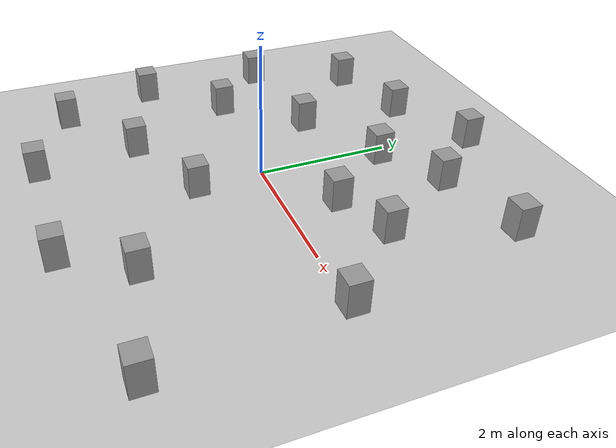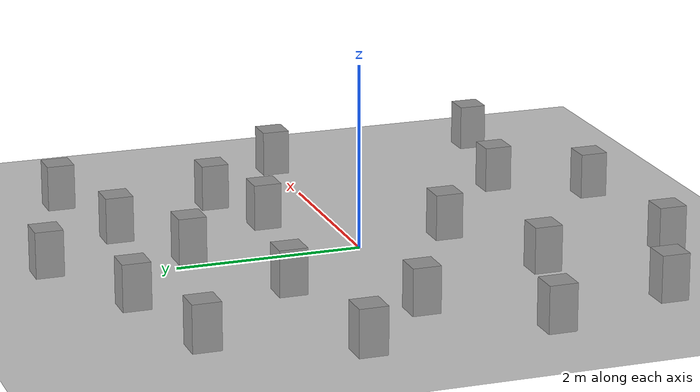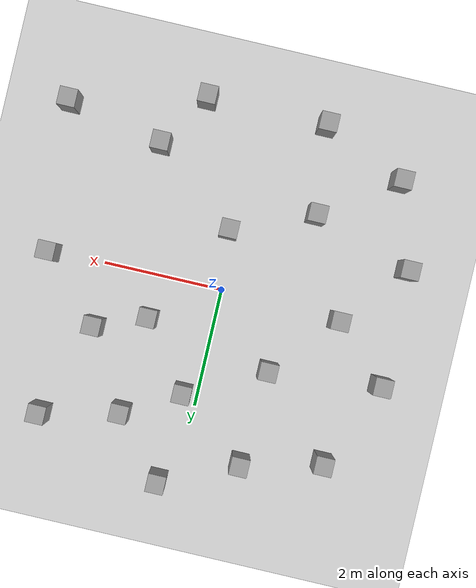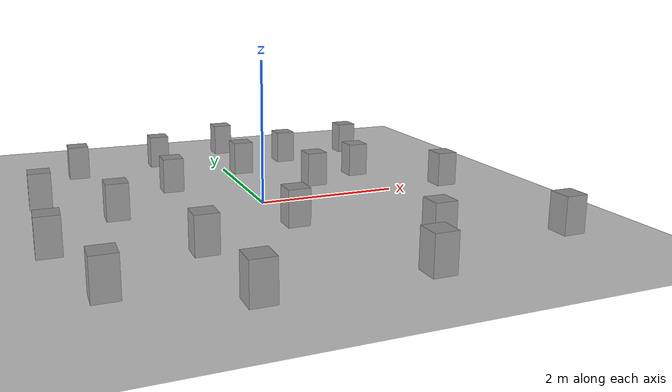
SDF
<sdf version="1.6">
 <world name="default">
  <light name="sun" type="directional">
   <pose>0 0 10 0 -0 0</pose>
   <diffuse>0.8 0.8 0.8 1</diffuse>
   <specular>0.2 0.2 0.2 1</specular>
   <attenuation>
    <range>1000</range>
    <constant>0.9</constant>
    <linear>0.01</linear>
    <quadratic>0.001</quadratic>
   </attenuation>
   <direction>-0.5 0.1 -0.9</direction>
  </light>
  <model name="ground_plane">
   <static>1</static>
   <link name="link">
    <collision name="collision">
     <geometry><plane><normal>0 0 1</normal><size>100 100</size></plane></geometry>
     <surface>
      <contact><collide_bitmask>65535</collide_bitmask></contact>
      <friction><ode><mu>100</mu><mu2>50</mu2></ode></friction>
     </surface>
    </collision>
    <visual name="visual">
     <cast_shadows>0</cast_shadows>
     <geometry><plane><normal>0 0 1</normal><size>100 100</size></plane></geometry>
     <material>
      <script><uri>file://media/materials/scripts/gazebo.material</uri><name>Gazebo/Grey</name></script>
     </material>
    </visual>
   </link>
  </model>
  <gravity>0 0 -9.8</gravity>
  <magnetic_field>6e-06 2.3e-05 -4.2e-05</magnetic_field>
  <atmosphere type="adiabatic"/>
  <physics name="default_physics" default="0" type="ode">
   <max_step_size>0.001</max_step_size>
   <real_time_factor>1</real_time_factor>
   <real_time_update_rate>1000</real_time_update_rate>
  </physics>
  <scene><ambient>0.4 0.4 0.4 1</ambient><background>0.7 0.7 0.7 1</background><shadows>1</shadows></scene>
  <audio><device>default</device></audio>
  <spherical_coordinates>
   <surface_model>EARTH_WGS84</surface_model>
   <latitude_deg>0</latitude_deg>
   <longitude_deg>0</longitude_deg>
   <elevation>0</elevation>
   <heading_deg>0</heading_deg>
  </spherical_coordinates>
  <model name="Untitled1_0">
   <link name="link_0">
    <inertial>
     <mass>1</mass>
     <inertia>
      <ixx>0.166667</ixx>
      <ixy>0</ixy>
      <ixz>0</ixz>
      <iyy>0.166667</iyy>
      <iyz>0</iyz>
      <izz>0.166667</izz>
     </inertia>
    </inertial>
    <visual name="visual">
     <geometry><box><size>0.3 0.3 0.5</size></box></geometry>
     <material>
      <lighting>1</lighting>
      <script><uri>file://media/materials/scripts/gazebo.material</uri><name>Gazebo/Grey</name></script>
      <shader type="vertex"><normal_map>__default__</normal_map></shader>
      <ambient>0.3 0.3 0.3 1</ambient>
      <diffuse>0.7 0.7 0.7 1</diffuse>
      <specular>0.01 0.01 0.01 1</specular>
      <emissive>0 0 0 1</emissive>
     </material>
    </visual>
    <collision name="collision">
     <geometry><box><size>0.3 0.3 0.5</size></box></geometry>
     <surface>
      <friction>
       <ode><mu>1</mu><mu2>1</mu2><fdir1>0 0 0</fdir1><slip1>0</slip1><slip2>0</slip2></ode>
       <torsional>
        <coefficient>1</coefficient>
        <patch_radius>0</patch_radius>
        <surface_radius>0</surface_radius>
        <use_patch_radius>1</use_patch_radius>
        <ode><slip>0</slip></ode>
       </torsional>
      </friction>
      <bounce><restitution_coefficient>0</restitution_coefficient><threshold>1e+06</threshold></bounce>
      <contact>
       <collide_without_contact>0</collide_without_contact>
       <collide_without_contact_bitmask>1</collide_without_contact_bitmask>
       <collide_bitmask>1</collide_bitmask>
       <ode>
        <soft_cfm>0</soft_cfm>
        <soft_erp>0.2</soft_erp>
        <kp>1e+13</kp>
        <kd>1</kd>
        <max_vel>0.01</max_vel>
        <min_depth>0</min_depth>
       </ode>
       <bullet>
        <split_impulse>1</split_impulse>
        <split_impulse_penetration_threshold>-0.01</split_impulse_penetration_threshold>
        <soft_cfm>0</soft_cfm>
        <soft_erp>0.2</soft_erp>
        <kp>1e+13</kp>
        <kd>1</kd>
       </bullet>
      </contact>
     </surface>
    </collision>
   </link>
   <static>0</static>
   <pose>2.92004 0.021247 0.25 0 -0 -1e-06</pose>
  </model>
  <model name="Untitled1_1">
   <link name="link_0">
    <inertial>
     <mass>1</mass>
     <inertia>
      <ixx>0.166667</ixx>
      <ixy>0</ixy>
      <ixz>0</ixz>
      <iyy>0.166667</iyy>
      <iyz>0</iyz>
      <izz>0.166667</izz>
     </inertia>
    </inertial>
    <visual name="visual">
     <geometry><box><size>0.3 0.3 0.5</size></box></geometry>
     <material>
      <lighting>1</lighting>
      <script><uri>file://media/materials/scripts/gazebo.material</uri><name>Gazebo/Grey</name></script>
      <shader type="vertex"><normal_map>__default__</normal_map></shader>
      <ambient>0.3 0.3 0.3 1</ambient>
      <diffuse>0.7 0.7 0.7 1</diffuse>
      <specular>0.01 0.01 0.01 1</specular>
      <emissive>0 0 0 1</emissive>
     </material>
    </visual>
    <collision name="collision">
     <geometry><box><size>0.3 0.3 0.5</size></box></geometry>
     <surface>
      <friction>
       <ode><mu>1</mu><mu2>1</mu2><fdir1>0 0 0</fdir1><slip1>0</slip1><slip2>0</slip2></ode>
       <torsional>
        <coefficient>1</coefficient>
        <patch_radius>0</patch_radius>
        <surface_radius>0</surface_radius>
        <use_patch_radius>1</use_patch_radius>
        <ode><slip>0</slip></ode>
       </torsional>
      </friction>
      <bounce><restitution_coefficient>0</restitution_coefficient><threshold>1e+06</threshold></bounce>
      <contact>
       <collide_without_contact>0</collide_without_contact>
       <collide_without_contact_bitmask>1</collide_without_contact_bitmask>
       <collide_bitmask>1</collide_bitmask>
       <ode>
        <soft_cfm>0</soft_cfm>
        <soft_erp>0.2</soft_erp>
        <kp>1e+13</kp>
        <kd>1</kd>
        <max_vel>0.01</max_vel>
        <min_depth>0</min_depth>
       </ode>
       <bullet>
        <split_impulse>1</split_impulse>
        <split_impulse_penetration_threshold>-0.01</split_impulse_penetration_threshold>
        <soft_cfm>0</soft_cfm>
        <soft_erp>0.2</soft_erp>
        <kp>1e+13</kp>
        <kd>1</kd>
       </bullet>
      </contact>
     </surface>
    </collision>
   </link>
   <static>0</static>
   <pose>1.07412 0.713994 0.25 0 -0 2e-06</pose>
  </model>
  <model name="Untitled1_2">
   <link name="link_0">
    <inertial>
     <mass>1</mass>
     <inertia>
      <ixx>0.166667</ixx>
      <ixy>0</ixy>
      <ixz>0</ixz>
      <iyy>0.166667</iyy>
      <iyz>0</iyz>
      <izz>0.166667</izz>
     </inertia>
    </inertial>
    <visual name="visual">
     <geometry><box><size>0.3 0.3 0.5</size></box></geometry>
     <material>
      <lighting>1</lighting>
      <script><uri>file://media/materials/scripts/gazebo.material</uri><name>Gazebo/Grey</name></script>
      <shader type="vertex"><normal_map>__default__</normal_map></shader>
      <ambient>0.3 0.3 0.3 1</ambient>
      <diffuse>0.7 0.7 0.7 1</diffuse>
      <specular>0.01 0.01 0.01 1</specular>
      <emissive>0 0 0 1</emissive>
     </material>
    </visual>
    <collision name="collision">
     <geometry><box><size>0.3 0.3 0.5</size></box></geometry>
     <surface>
      <friction>
       <ode><mu>1</mu><mu2>1</mu2><fdir1>0 0 0</fdir1><slip1>0</slip1><slip2>0</slip2></ode>
       <torsional>
        <coefficient>1</coefficient>
        <patch_radius>0</patch_radius>
        <surface_radius>0</surface_radius>
        <use_patch_radius>1</use_patch_radius>
        <ode><slip>0</slip></ode>
       </torsional>
      </friction>
      <bounce><restitution_coefficient>0</restitution_coefficient><threshold>1e+06</threshold></bounce>
      <contact>
       <collide_without_contact>0</collide_without_contact>
       <collide_without_contact_bitmask>1</collide_without_contact_bitmask>
       <collide_bitmask>1</collide_bitmask>
       <ode>
        <soft_cfm>0</soft_cfm>
        <soft_erp>0.2</soft_erp>
        <kp>1e+13</kp>
        <kd>1</kd>
        <max_vel>0.01</max_vel>
        <min_depth>0</min_depth>
       </ode>
       <bullet>
        <split_impulse>1</split_impulse>
        <split_impulse_penetration_threshold>-0.01</split_impulse_penetration_threshold>
        <soft_cfm>0</soft_cfm>
        <soft_erp>0.2</soft_erp>
        <kp>1e+13</kp>
        <kd>1</kd>
       </bullet>
      </contact>
     </surface>
    </collision>
   </link>
   <static>0</static>
   <pose>1.91895 1.04629 0.25 0 0 -3e-06</pose>
  </model>
  <model name="Untitled1_3">
   <link name="link_0">
    <inertial>
     <mass>1</mass>
     <inertia>
      <ixx>0.166667</ixx>
      <ixy>0</ixy>
      <ixz>0</ixz>
      <iyy>0.166667</iyy>
      <iyz>0</iyz>
      <izz>0.166667</izz>
     </inertia>
    </inertial>
    <visual name="visual">
     <geometry><box><size>0.3 0.3 0.5</size></box></geometry>
     <material>
      <lighting>1</lighting>
      <script><uri>file://media/materials/scripts/gazebo.material</uri><name>Gazebo/Grey</name></script>
      <shader type="vertex"><normal_map>__default__</normal_map></shader>
      <ambient>0.3 0.3 0.3 1</ambient>
      <diffuse>0.7 0.7 0.7 1</diffuse>
      <specular>0.01 0.01 0.01 1</specular>
      <emissive>0 0 0 1</emissive>
     </material>
    </visual>
    <collision name="collision">
     <geometry><box><size>0.3 0.3 0.5</size></box></geometry>
     <surface>
      <friction>
       <ode><mu>1</mu><mu2>1</mu2><fdir1>0 0 0</fdir1><slip1>0</slip1><slip2>0</slip2></ode>
       <torsional>
        <coefficient>1</coefficient>
        <patch_radius>0</patch_radius>
        <surface_radius>0</surface_radius>
        <use_patch_radius>1</use_patch_radius>
        <ode><slip>0</slip></ode>
       </torsional>
      </friction>
      <bounce><restitution_coefficient>0</restitution_coefficient><threshold>1e+06</threshold></bounce>
      <contact>
       <collide_without_contact>0</collide_without_contact>
       <collide_without_contact_bitmask>1</collide_without_contact_bitmask>
       <collide_bitmask>1</collide_bitmask>
       <ode>
        <soft_cfm>0</soft_cfm>
        <soft_erp>0.2</soft_erp>
        <kp>1e+13</kp>
        <kd>1</kd>
        <max_vel>0.01</max_vel>
        <min_depth>0</min_depth>
       </ode>
       <bullet>
        <split_impulse>1</split_impulse>
        <split_impulse_penetration_threshold>-0.01</split_impulse_penetration_threshold>
        <soft_cfm>0</soft_cfm>
        <soft_erp>0.2</soft_erp>
        <kp>1e+13</kp>
        <kd>1</kd>
       </bullet>
      </contact>
     </surface>
    </collision>
   </link>
   <static>0</static>
   <pose>0.319842 3.2987 0.25 -0 -0 -1e-06</pose>
  </model>
  <model name="Untitled1_4">
   <link name="link_0">
    <inertial>
     <mass>1</mass>
     <inertia>
      <ixx>0.166667</ixx>
      <ixy>0</ixy>
      <ixz>0</ixz>
      <iyy>0.166667</iyy>
      <iyz>0</iyz>
      <izz>0.166667</izz>
     </inertia>
    </inertial>
    <visual name="visual">
     <geometry><box><size>0.3 0.3 0.5</size></box></geometry>
     <material>
      <lighting>1</lighting>
      <script><uri>file://media/materials/scripts/gazebo.material</uri><name>Gazebo/Grey</name></script>
      <shader type="vertex"><normal_map>__default__</normal_map></shader>
      <ambient>0.3 0.3 0.3 1</ambient>
      <diffuse>0.7 0.7 0.7 1</diffuse>
      <specular>0.01 0.01 0.01 1</specular>
      <emissive>0 0 0 1</emissive>
     </material>
    </visual>
    <collision name="collision">
     <geometry><box><size>0.3 0.3 0.5</size></box></geometry>
     <surface>
      <friction>
       <ode><mu>1</mu><mu2>1</mu2><fdir1>0 0 0</fdir1><slip1>0</slip1><slip2>0</slip2></ode>
       <torsional>
        <coefficient>1</coefficient>
        <patch_radius>0</patch_radius>
        <surface_radius>0</surface_radius>
        <use_patch_radius>1</use_patch_radius>
        <ode><slip>0</slip></ode>
       </torsional>
      </friction>
      <bounce><restitution_coefficient>0</restitution_coefficient><threshold>1e+06</threshold></bounce>
      <contact>
       <collide_without_contact>0</collide_without_contact>
       <collide_without_contact_bitmask>1</collide_without_contact_bitmask>
       <collide_bitmask>1</collide_bitmask>
       <ode>
        <soft_cfm>0</soft_cfm>
        <soft_erp>0.2</soft_erp>
        <kp>1e+13</kp>
        <kd>1</kd>
        <max_vel>0.01</max_vel>
        <min_depth>0</min_depth>
       </ode>
       <bullet>
        <split_impulse>1</split_impulse>
        <split_impulse_penetration_threshold>-0.01</split_impulse_penetration_threshold>
        <soft_cfm>0</soft_cfm>
        <soft_erp>0.2</soft_erp>
        <kp>1e+13</kp>
        <kd>1</kd>
       </bullet>
      </contact>
     </surface>
    </collision>
   </link>
   <static>0</static>
   <pose>0.24227 1.79828 0.25 0 0 -5e-06</pose>
  </model>
  <model name="Untitled1_5">
   <link name="link_0">
    <inertial>
     <mass>1</mass>
     <inertia>
      <ixx>0.166667</ixx>
      <ixy>0</ixy>
      <ixz>0</ixz>
      <iyy>0.166667</iyy>
      <iyz>0</iyz>
      <izz>0.166667</izz>
     </inertia>
    </inertial>
    <visual name="visual">
     <geometry><box><size>0.3 0.3 0.5</size></box></geometry>
     <material>
      <lighting>1</lighting>
      <script><uri>file://media/materials/scripts/gazebo.material</uri><name>Gazebo/Grey</name></script>
      <shader type="vertex"><normal_map>__default__</normal_map></shader>
      <ambient>0.3 0.3 0.3 1</ambient>
      <diffuse>0.7 0.7 0.7 1</diffuse>
      <specular>0.01 0.01 0.01 1</specular>
      <emissive>0 0 0 1</emissive>
     </material>
    </visual>
    <collision name="collision">
     <geometry><box><size>0.3 0.3 0.5</size></box></geometry>
     <surface>
      <friction>
       <ode><mu>1</mu><mu2>1</mu2><fdir1>0 0 0</fdir1><slip1>0</slip1><slip2>0</slip2></ode>
       <torsional>
        <coefficient>1</coefficient>
        <patch_radius>0</patch_radius>
        <surface_radius>0</surface_radius>
        <use_patch_radius>1</use_patch_radius>
        <ode><slip>0</slip></ode>
       </torsional>
      </friction>
      <bounce><restitution_coefficient>0</restitution_coefficient><threshold>1e+06</threshold></bounce>
      <contact>
       <collide_without_contact>0</collide_without_contact>
       <collide_without_contact_bitmask>1</collide_without_contact_bitmask>
       <collide_bitmask>1</collide_bitmask>
       <ode>
        <soft_cfm>0</soft_cfm>
        <soft_erp>0.2</soft_erp>
        <kp>1e+13</kp>
        <kd>1</kd>
        <max_vel>0.01</max_vel>
        <min_depth>0</min_depth>
       </ode>
       <bullet>
        <split_impulse>1</split_impulse>
        <split_impulse_penetration_threshold>-0.01</split_impulse_penetration_threshold>
        <soft_cfm>0</soft_cfm>
        <soft_erp>0.2</soft_erp>
        <kp>1e+13</kp>
        <kd>1</kd>
       </bullet>
      </contact>
     </surface>
    </collision>
   </link>
   <static>0</static>
   <pose>1.16493 2.33132 0.25 0 -0 2e-06</pose>
  </model>
  <model name="Untitled1_6">
   <link name="link_0">
    <inertial>
     <mass>1</mass>
     <inertia>
      <ixx>0.166667</ixx>
      <ixy>0</ixy>
      <ixz>0</ixz>
      <iyy>0.166667</iyy>
      <iyz>0</iyz>
      <izz>0.166667</izz>
     </inertia>
    </inertial>
    <visual name="visual">
     <geometry><box><size>0.3 0.3 0.5</size></box></geometry>
     <material>
      <lighting>1</lighting>
      <script><uri>file://media/materials/scripts/gazebo.material</uri><name>Gazebo/Grey</name></script>
      <shader type="vertex"><normal_map>__default__</normal_map></shader>
      <ambient>0.3 0.3 0.3 1</ambient>
      <diffuse>0.7 0.7 0.7 1</diffuse>
      <specular>0.01 0.01 0.01 1</specular>
      <emissive>0 0 0 1</emissive>
     </material>
    </visual>
    <collision name="collision">
     <geometry><box><size>0.3 0.3 0.5</size></box></geometry>
     <surface>
      <friction>
       <ode><mu>1</mu><mu2>1</mu2><fdir1>0 0 0</fdir1><slip1>0</slip1><slip2>0</slip2></ode>
       <torsional>
        <coefficient>1</coefficient>
        <patch_radius>0</patch_radius>
        <surface_radius>0</surface_radius>
        <use_patch_radius>1</use_patch_radius>
        <ode><slip>0</slip></ode>
       </torsional>
      </friction>
      <bounce><restitution_coefficient>0</restitution_coefficient><threshold>1e+06</threshold></bounce>
      <contact>
       <collide_without_contact>0</collide_without_contact>
       <collide_without_contact_bitmask>1</collide_without_contact_bitmask>
       <collide_bitmask>1</collide_bitmask>
       <ode>
        <soft_cfm>0</soft_cfm>
        <soft_erp>0.2</soft_erp>
        <kp>1e+13</kp>
        <kd>1</kd>
        <max_vel>0.01</max_vel>
        <min_depth>0</min_depth>
       </ode>
       <bullet>
        <split_impulse>1</split_impulse>
        <split_impulse_penetration_threshold>-0.01</split_impulse_penetration_threshold>
        <soft_cfm>0</soft_cfm>
        <soft_erp>0.2</soft_erp>
        <kp>1e+13</kp>
        <kd>1</kd>
       </bullet>
      </contact>
     </surface>
    </collision>
   </link>
   <static>0</static>
   <pose>2.46735 2.64188 0.25 0 -0 2e-06</pose>
  </model>
  <model name="Untitled1_7">
   <link name="link_0">
    <inertial>
     <mass>1</mass>
     <inertia>
      <ixx>0.166667</ixx>
      <ixy>0</ixy>
      <ixz>0</ixz>
      <iyy>0.166667</iyy>
      <iyz>0</iyz>
      <izz>0.166667</izz>
     </inertia>
    </inertial>
    <visual name="visual">
     <geometry><box><size>0.3 0.3 0.5</size></box></geometry>
     <material>
      <lighting>1</lighting>
      <script><uri>file://media/materials/scripts/gazebo.material</uri><name>Gazebo/Grey</name></script>
      <shader type="vertex"><normal_map>__default__</normal_map></shader>
      <ambient>0.3 0.3 0.3 1</ambient>
      <diffuse>0.7 0.7 0.7 1</diffuse>
      <specular>0.01 0.01 0.01 1</specular>
      <emissive>0 0 0 1</emissive>
     </material>
    </visual>
    <collision name="collision">
     <geometry><box><size>0.3 0.3 0.5</size></box></geometry>
     <surface>
      <friction>
       <ode><mu>1</mu><mu2>1</mu2><fdir1>0 0 0</fdir1><slip1>0</slip1><slip2>0</slip2></ode>
       <torsional>
        <coefficient>1</coefficient>
        <patch_radius>0</patch_radius>
        <surface_radius>0</surface_radius>
        <use_patch_radius>1</use_patch_radius>
        <ode><slip>0</slip></ode>
       </torsional>
      </friction>
      <bounce><restitution_coefficient>0</restitution_coefficient><threshold>1e+06</threshold></bounce>
      <contact>
       <collide_without_contact>0</collide_without_contact>
       <collide_without_contact_bitmask>1</collide_without_contact_bitmask>
       <collide_bitmask>1</collide_bitmask>
       <ode>
        <soft_cfm>0</soft_cfm>
        <soft_erp>0.2</soft_erp>
        <kp>1e+13</kp>
        <kd>1</kd>
        <max_vel>0.01</max_vel>
        <min_depth>0</min_depth>
       </ode>
       <bullet>
        <split_impulse>1</split_impulse>
        <split_impulse_penetration_threshold>-0.01</split_impulse_penetration_threshold>
        <soft_cfm>0</soft_cfm>
        <soft_erp>0.2</soft_erp>
        <kp>1e+13</kp>
        <kd>1</kd>
       </bullet>
      </contact>
     </surface>
    </collision>
   </link>
   <static>0</static>
   <pose>-0.937941 2.72218 0.25 -0 -0 -1e-06</pose>
  </model>
  <model name="Untitled1_8">
   <link name="link_0">
    <inertial>
     <mass>1</mass>
     <inertia>
      <ixx>0.166667</ixx>
      <ixy>0</ixy>
      <ixz>0</ixz>
      <iyy>0.166667</iyy>
      <iyz>0</iyz>
      <izz>0.166667</izz>
     </inertia>
    </inertial>
    <visual name="visual">
     <geometry><box><size>0.3 0.3 0.5</size></box></geometry>
     <material>
      <lighting>1</lighting>
      <script><uri>file://media/materials/scripts/gazebo.material</uri><name>Gazebo/Grey</name></script>
      <shader type="vertex"><normal_map>__default__</normal_map></shader>
      <ambient>0.3 0.3 0.3 1</ambient>
      <diffuse>0.7 0.7 0.7 1</diffuse>
      <specular>0.01 0.01 0.01 1</specular>
      <emissive>0 0 0 1</emissive>
     </material>
    </visual>
    <collision name="collision">
     <geometry><box><size>0.3 0.3 0.5</size></box></geometry>
     <surface>
      <friction>
       <ode><mu>1</mu><mu2>1</mu2><fdir1>0 0 0</fdir1><slip1>0</slip1><slip2>0</slip2></ode>
       <torsional>
        <coefficient>1</coefficient>
        <patch_radius>0</patch_radius>
        <surface_radius>0</surface_radius>
        <use_patch_radius>1</use_patch_radius>
        <ode><slip>0</slip></ode>
       </torsional>
      </friction>
      <bounce><restitution_coefficient>0</restitution_coefficient><threshold>1e+06</threshold></bounce>
      <contact>
       <collide_without_contact>0</collide_without_contact>
       <collide_without_contact_bitmask>1</collide_without_contact_bitmask>
       <collide_bitmask>1</collide_bitmask>
       <ode>
        <soft_cfm>0</soft_cfm>
        <soft_erp>0.2</soft_erp>
        <kp>1e+13</kp>
        <kd>1</kd>
        <max_vel>0.01</max_vel>
        <min_depth>0</min_depth>
       </ode>
       <bullet>
        <split_impulse>1</split_impulse>
        <split_impulse_penetration_threshold>-0.01</split_impulse_penetration_threshold>
        <soft_cfm>0</soft_cfm>
        <soft_erp>0.2</soft_erp>
        <kp>1e+13</kp>
        <kd>1</kd>
       </bullet>
      </contact>
     </surface>
    </collision>
   </link>
   <static>0</static>
   <pose>-2.00257 0.054045 0.25 0 0 -2e-06</pose>
  </model>
  <model name="Untitled1_9">
   <link name="link_0">
    <inertial>
     <mass>1</mass>
     <inertia>
      <ixx>0.166667</ixx>
      <ixy>0</ixy>
      <ixz>0</ixz>
      <iyy>0.166667</iyy>
      <iyz>0</iyz>
      <izz>0.166667</izz>
     </inertia>
    </inertial>
    <visual name="visual">
     <geometry><box><size>0.3 0.3 0.5</size></box></geometry>
     <material>
      <lighting>1</lighting>
      <script><uri>file://media/materials/scripts/gazebo.material</uri><name>Gazebo/Grey</name></script>
      <shader type="vertex"><normal_map>__default__</normal_map></shader>
      <ambient>0.3 0.3 0.3 1</ambient>
      <diffuse>0.7 0.7 0.7 1</diffuse>
      <specular>0.01 0.01 0.01 1</specular>
      <emissive>0 0 0 1</emissive>
     </material>
    </visual>
    <collision name="collision">
     <geometry><box><size>0.3 0.3 0.5</size></box></geometry>
     <surface>
      <friction>
       <ode><mu>1</mu><mu2>1</mu2><fdir1>0 0 0</fdir1><slip1>0</slip1><slip2>0</slip2></ode>
       <torsional>
        <coefficient>1</coefficient>
        <patch_radius>0</patch_radius>
        <surface_radius>0</surface_radius>
        <use_patch_radius>1</use_patch_radius>
        <ode><slip>0</slip></ode>
       </torsional>
      </friction>
      <bounce><restitution_coefficient>0</restitution_coefficient><threshold>1e+06</threshold></bounce>
      <contact>
       <collide_without_contact>0</collide_without_contact>
       <collide_without_contact_bitmask>1</collide_without_contact_bitmask>
       <collide_bitmask>1</collide_bitmask>
       <ode>
        <soft_cfm>0</soft_cfm>
        <soft_erp>0.2</soft_erp>
        <kp>1e+13</kp>
        <kd>1</kd>
        <max_vel>0.01</max_vel>
        <min_depth>0</min_depth>
       </ode>
       <bullet>
        <split_impulse>1</split_impulse>
        <split_impulse_penetration_threshold>-0.01</split_impulse_penetration_threshold>
        <soft_cfm>0</soft_cfm>
        <soft_erp>0.2</soft_erp>
        <kp>1e+13</kp>
        <kd>1</kd>
       </bullet>
      </contact>
     </surface>
    </collision>
   </link>
   <static>0</static>
   <pose>-1.24079 -1.5719 0.25 0 -0 -4e-06</pose>
  </model>
  <model name="Untitled1_10">
   <link name="link_0">
    <inertial>
     <mass>1</mass>
     <inertia>
      <ixx>0.166667</ixx>
      <ixy>0</ixy>
      <ixz>0</ixz>
      <iyy>0.166667</iyy>
      <iyz>0</iyz>
      <izz>0.166667</izz>
     </inertia>
    </inertial>
    <visual name="visual">
     <geometry><box><size>0.3 0.3 0.5</size></box></geometry>
     <material>
      <lighting>1</lighting>
      <script><uri>file://media/materials/scripts/gazebo.material</uri><name>Gazebo/Grey</name></script>
      <shader type="vertex"><normal_map>__default__</normal_map></shader>
      <ambient>0.3 0.3 0.3 1</ambient>
      <diffuse>0.7 0.7 0.7 1</diffuse>
      <specular>0.01 0.01 0.01 1</specular>
      <emissive>0 0 0 1</emissive>
     </material>
    </visual>
    <collision name="collision">
     <geometry><box><size>0.3 0.3 0.5</size></box></geometry>
     <surface>
      <friction>
       <ode><mu>1</mu><mu2>1</mu2><fdir1>0 0 0</fdir1><slip1>0</slip1><slip2>0</slip2></ode>
       <torsional>
        <coefficient>1</coefficient>
        <patch_radius>0</patch_radius>
        <surface_radius>0</surface_radius>
        <use_patch_radius>1</use_patch_radius>
        <ode><slip>0</slip></ode>
       </torsional>
      </friction>
      <bounce><restitution_coefficient>0</restitution_coefficient><threshold>1e+06</threshold></bounce>
      <contact>
       <collide_without_contact>0</collide_without_contact>
       <collide_without_contact_bitmask>1</collide_without_contact_bitmask>
       <collide_bitmask>1</collide_bitmask>
       <ode>
        <soft_cfm>0</soft_cfm>
        <soft_erp>0.2</soft_erp>
        <kp>1e+13</kp>
        <kd>1</kd>
        <max_vel>0.01</max_vel>
        <min_depth>0</min_depth>
       </ode>
       <bullet>
        <split_impulse>1</split_impulse>
        <split_impulse_penetration_threshold>-0.01</split_impulse_penetration_threshold>
        <soft_cfm>0</soft_cfm>
        <soft_erp>0.2</soft_erp>
        <kp>1e+13</kp>
        <kd>1</kd>
       </bullet>
      </contact>
     </surface>
    </collision>
   </link>
   <static>0</static>
   <pose>1.51768 -2.13627 0.25 0 0 -1e-06</pose>
  </model>
  <model name="Untitled1_11">
   <link name="link_0">
    <inertial>
     <mass>1</mass>
     <inertia>
      <ixx>0.166667</ixx>
      <ixy>0</ixy>
      <ixz>0</ixz>
      <iyy>0.166667</iyy>
      <iyz>0</iyz>
      <izz>0.166667</izz>
     </inertia>
    </inertial>
    <visual name="visual">
     <geometry><box><size>0.3 0.3 0.5</size></box></geometry>
     <material>
      <lighting>1</lighting>
      <script><uri>file://media/materials/scripts/gazebo.material</uri><name>Gazebo/Grey</name></script>
      <shader type="vertex"><normal_map>__default__</normal_map></shader>
      <ambient>0.3 0.3 0.3 1</ambient>
      <diffuse>0.7 0.7 0.7 1</diffuse>
      <specular>0.01 0.01 0.01 1</specular>
      <emissive>0 0 0 1</emissive>
     </material>
    </visual>
    <collision name="collision">
     <geometry><box><size>0.3 0.3 0.5</size></box></geometry>
     <surface>
      <friction>
       <ode><mu>1</mu><mu2>1</mu2><fdir1>0 0 0</fdir1><slip1>0</slip1><slip2>0</slip2></ode>
       <torsional>
        <coefficient>1</coefficient>
        <patch_radius>0</patch_radius>
        <surface_radius>0</surface_radius>
        <use_patch_radius>1</use_patch_radius>
        <ode><slip>0</slip></ode>
       </torsional>
      </friction>
      <bounce><restitution_coefficient>0</restitution_coefficient><threshold>1e+06</threshold></bounce>
      <contact>
       <collide_without_contact>0</collide_without_contact>
       <collide_without_contact_bitmask>1</collide_without_contact_bitmask>
       <collide_bitmask>1</collide_bitmask>
       <ode>
        <soft_cfm>0</soft_cfm>
        <soft_erp>0.2</soft_erp>
        <kp>1e+13</kp>
        <kd>1</kd>
        <max_vel>0.01</max_vel>
        <min_depth>0</min_depth>
       </ode>
       <bullet>
        <split_impulse>1</split_impulse>
        <split_impulse_penetration_threshold>-0.01</split_impulse_penetration_threshold>
        <soft_cfm>0</soft_cfm>
        <soft_erp>0.2</soft_erp>
        <kp>1e+13</kp>
        <kd>1</kd>
       </bullet>
      </contact>
     </surface>
    </collision>
   </link>
   <static>0</static>
   <pose>3.14225 -2.47399 0.25 0 0 -4e-06</pose>
  </model>
  <model name="Untitled1_12">
   <link name="link_0">
    <inertial>
     <mass>1</mass>
     <inertia>
      <ixx>0.166667</ixx>
      <ixy>0</ixy>
      <ixz>0</ixz>
      <iyy>0.166667</iyy>
      <iyz>0</iyz>
      <izz>0.166667</izz>
     </inertia>
    </inertial>
    <visual name="visual">
     <geometry><box><size>0.3 0.3 0.5</size></box></geometry>
     <material>
      <lighting>1</lighting>
      <script><uri>file://media/materials/scripts/gazebo.material</uri><name>Gazebo/Grey</name></script>
      <shader type="vertex"><normal_map>__default__</normal_map></shader>
      <ambient>0.3 0.3 0.3 1</ambient>
      <diffuse>0.7 0.7 0.7 1</diffuse>
      <specular>0.01 0.01 0.01 1</specular>
      <emissive>0 0 0 1</emissive>
     </material>
    </visual>
    <collision name="collision">
     <geometry><box><size>0.3 0.3 0.5</size></box></geometry>
     <surface>
      <friction>
       <ode><mu>1</mu><mu2>1</mu2><fdir1>0 0 0</fdir1><slip1>0</slip1><slip2>0</slip2></ode>
       <torsional>
        <coefficient>1</coefficient>
        <patch_radius>0</patch_radius>
        <surface_radius>0</surface_radius>
        <use_patch_radius>1</use_patch_radius>
        <ode><slip>0</slip></ode>
       </torsional>
      </friction>
      <bounce><restitution_coefficient>0</restitution_coefficient><threshold>1e+06</threshold></bounce>
      <contact>
       <collide_without_contact>0</collide_without_contact>
       <collide_without_contact_bitmask>1</collide_without_contact_bitmask>
       <collide_bitmask>1</collide_bitmask>
       <ode>
        <soft_cfm>0</soft_cfm>
        <soft_erp>0.2</soft_erp>
        <kp>1e+13</kp>
        <kd>1</kd>
        <max_vel>0.01</max_vel>
        <min_depth>0</min_depth>
       </ode>
       <bullet>
        <split_impulse>1</split_impulse>
        <split_impulse_penetration_threshold>-0.01</split_impulse_penetration_threshold>
        <soft_cfm>0</soft_cfm>
        <soft_erp>0.2</soft_erp>
        <kp>1e+13</kp>
        <kd>1</kd>
       </bullet>
      </contact>
     </surface>
    </collision>
   </link>
   <static>0</static>
   <pose>0.939263 -3.04484 0.25 0 -0 0</pose>
  </model>
  <model name="Untitled1_13">
   <link name="link_0">
    <inertial>
     <mass>1</mass>
     <inertia>
      <ixx>0.166667</ixx>
      <ixy>0</ixy>
      <ixz>0</ixz>
      <iyy>0.166667</iyy>
      <iyz>0</iyz>
      <izz>0.166667</izz>
     </inertia>
    </inertial>
    <visual name="visual">
     <geometry><box><size>0.3 0.3 0.5</size></box></geometry>
     <material>
      <lighting>1</lighting>
      <script><uri>file://media/materials/scripts/gazebo.material</uri><name>Gazebo/Grey</name></script>
      <shader type="vertex"><normal_map>__default__</normal_map></shader>
      <ambient>0.3 0.3 0.3 1</ambient>
      <diffuse>0.7 0.7 0.7 1</diffuse>
      <specular>0.01 0.01 0.01 1</specular>
      <emissive>0 0 0 1</emissive>
     </material>
    </visual>
    <collision name="collision">
     <geometry><box><size>0.3 0.3 0.5</size></box></geometry>
     <surface>
      <friction>
       <ode><mu>1</mu><mu2>1</mu2><fdir1>0 0 0</fdir1><slip1>0</slip1><slip2>0</slip2></ode>
       <torsional>
        <coefficient>1</coefficient>
        <patch_radius>0</patch_radius>
        <surface_radius>0</surface_radius>
        <use_patch_radius>1</use_patch_radius>
        <ode><slip>0</slip></ode>
       </torsional>
      </friction>
      <bounce><restitution_coefficient>0</restitution_coefficient><threshold>1e+06</threshold></bounce>
      <contact>
       <collide_without_contact>0</collide_without_contact>
       <collide_without_contact_bitmask>1</collide_without_contact_bitmask>
       <collide_bitmask>1</collide_bitmask>
       <ode>
        <soft_cfm>0</soft_cfm>
        <soft_erp>0.2</soft_erp>
        <kp>1e+13</kp>
        <kd>1</kd>
        <max_vel>0.01</max_vel>
        <min_depth>0</min_depth>
       </ode>
       <bullet>
        <split_impulse>1</split_impulse>
        <split_impulse_penetration_threshold>-0.01</split_impulse_penetration_threshold>
        <soft_cfm>0</soft_cfm>
        <soft_erp>0.2</soft_erp>
        <kp>1e+13</kp>
        <kd>1</kd>
       </bullet>
      </contact>
     </surface>
    </collision>
   </link>
   <static>0</static>
   <pose>-1.07906 -3.05355 0.25 -0 -0 -0</pose>
  </model>
  <model name="Untitled1_14">
   <link name="link_0">
    <inertial>
     <mass>1</mass>
     <inertia>
      <ixx>0.166667</ixx>
      <ixy>0</ixy>
      <ixz>0</ixz>
      <iyy>0.166667</iyy>
      <iyz>0</iyz>
      <izz>0.166667</izz>
     </inertia>
    </inertial>
    <visual name="visual">
     <geometry><box><size>0.3 0.3 0.5</size></box></geometry>
     <material>
      <lighting>1</lighting>
      <script><uri>file://media/materials/scripts/gazebo.material</uri><name>Gazebo/Grey</name></script>
      <shader type="vertex"><normal_map>__default__</normal_map></shader>
      <ambient>0.3 0.3 0.3 1</ambient>
      <diffuse>0.7 0.7 0.7 1</diffuse>
      <specular>0.01 0.01 0.01 1</specular>
      <emissive>0 0 0 1</emissive>
     </material>
    </visual>
    <collision name="collision">
     <geometry><box><size>0.3 0.3 0.5</size></box></geometry>
     <surface>
      <friction>
       <ode><mu>1</mu><mu2>1</mu2><fdir1>0 0 0</fdir1><slip1>0</slip1><slip2>0</slip2></ode>
       <torsional>
        <coefficient>1</coefficient>
        <patch_radius>0</patch_radius>
        <surface_radius>0</surface_radius>
        <use_patch_radius>1</use_patch_radius>
        <ode><slip>0</slip></ode>
       </torsional>
      </friction>
      <bounce><restitution_coefficient>0</restitution_coefficient><threshold>1e+06</threshold></bounce>
      <contact>
       <collide_without_contact>0</collide_without_contact>
       <collide_without_contact_bitmask>1</collide_without_contact_bitmask>
       <collide_bitmask>1</collide_bitmask>
       <ode>
        <soft_cfm>0</soft_cfm>
        <soft_erp>0.2</soft_erp>
        <kp>1e+13</kp>
        <kd>1</kd>
        <max_vel>0.01</max_vel>
        <min_depth>0</min_depth>
       </ode>
       <bullet>
        <split_impulse>1</split_impulse>
        <split_impulse_penetration_threshold>-0.01</split_impulse_penetration_threshold>
        <soft_cfm>0</soft_cfm>
        <soft_erp>0.2</soft_erp>
        <kp>1e+13</kp>
        <kd>1</kd>
       </bullet>
      </contact>
     </surface>
    </collision>
   </link>
   <static>0</static>
   <pose>-2.47206 -2.42476 0.25 -0 -0 -0</pose>
  </model>
  <model name="Untitled1_15">
   <link name="link_0">
    <inertial>
     <mass>1</mass>
     <inertia>
      <ixx>0.166667</ixx>
      <ixy>0</ixy>
      <ixz>0</ixz>
      <iyy>0.166667</iyy>
      <iyz>0</iyz>
      <izz>0.166667</izz>
     </inertia>
    </inertial>
    <visual name="visual">
     <geometry><box><size>0.3 0.3 0.5</size></box></geometry>
     <material>
      <lighting>1</lighting>
      <script><uri>file://media/materials/scripts/gazebo.material</uri><name>Gazebo/Grey</name></script>
      <shader type="vertex"><normal_map>__default__</normal_map></shader>
      <ambient>0.3 0.3 0.3 1</ambient>
      <diffuse>0.7 0.7 0.7 1</diffuse>
      <specular>0.01 0.01 0.01 1</specular>
      <emissive>0 0 0 1</emissive>
     </material>
    </visual>
    <collision name="collision">
     <geometry><box><size>0.3 0.3 0.5</size></box></geometry>
     <surface>
      <friction>
       <ode><mu>1</mu><mu2>1</mu2><fdir1>0 0 0</fdir1><slip1>0</slip1><slip2>0</slip2></ode>
       <torsional>
        <coefficient>1</coefficient>
        <patch_radius>0</patch_radius>
        <surface_radius>0</surface_radius>
        <use_patch_radius>1</use_patch_radius>
        <ode><slip>0</slip></ode>
       </torsional>
      </friction>
      <bounce><restitution_coefficient>0</restitution_coefficient><threshold>1e+06</threshold></bounce>
      <contact>
       <collide_without_contact>0</collide_without_contact>
       <collide_without_contact_bitmask>1</collide_without_contact_bitmask>
       <collide_bitmask>1</collide_bitmask>
       <ode>
        <soft_cfm>0</soft_cfm>
        <soft_erp>0.2</soft_erp>
        <kp>1e+13</kp>
        <kd>1</kd>
        <max_vel>0.01</max_vel>
        <min_depth>0</min_depth>
       </ode>
       <bullet>
        <split_impulse>1</split_impulse>
        <split_impulse_penetration_threshold>-0.01</split_impulse_penetration_threshold>
        <soft_cfm>0</soft_cfm>
        <soft_erp>0.2</soft_erp>
        <kp>1e+13</kp>
        <kd>1</kd>
       </bullet>
      </contact>
     </surface>
    </collision>
   </link>
   <static>0</static>
   <pose>-2.91522 -1.0143 0.25 0 0 -1e-06</pose>
  </model>
  <model name="Untitled1_16">
   <link name="link_0">
    <inertial>
     <mass>1</mass>
     <inertia>
      <ixx>0.166667</ixx>
      <ixy>0</ixy>
      <ixz>0</ixz>
      <iyy>0.166667</iyy>
      <iyz>0</iyz>
      <izz>0.166667</izz>
     </inertia>
    </inertial>
    <visual name="visual">
     <geometry><box><size>0.3 0.3 0.5</size></box></geometry>
     <material>
      <lighting>1</lighting>
      <script><uri>file://media/materials/scripts/gazebo.material</uri><name>Gazebo/Grey</name></script>
      <shader type="vertex"><normal_map>__default__</normal_map></shader>
      <ambient>0.3 0.3 0.3 1</ambient>
      <diffuse>0.7 0.7 0.7 1</diffuse>
      <specular>0.01 0.01 0.01 1</specular>
      <emissive>0 0 0 1</emissive>
     </material>
    </visual>
    <collision name="collision">
     <geometry><box><size>0.3 0.3 0.5</size></box></geometry>
     <surface>
      <friction>
       <ode><mu>1</mu><mu2>1</mu2><fdir1>0 0 0</fdir1><slip1>0</slip1><slip2>0</slip2></ode>
       <torsional>
        <coefficient>1</coefficient>
        <patch_radius>0</patch_radius>
        <surface_radius>0</surface_radius>
        <use_patch_radius>1</use_patch_radius>
        <ode><slip>0</slip></ode>
       </torsional>
      </friction>
      <bounce><restitution_coefficient>0</restitution_coefficient><threshold>1e+06</threshold></bounce>
      <contact>
       <collide_without_contact>0</collide_without_contact>
       <collide_without_contact_bitmask>1</collide_without_contact_bitmask>
       <collide_bitmask>1</collide_bitmask>
       <ode>
        <soft_cfm>0</soft_cfm>
        <soft_erp>0.2</soft_erp>
        <kp>1e+13</kp>
        <kd>1</kd>
        <max_vel>0.01</max_vel>
        <min_depth>0</min_depth>
       </ode>
       <bullet>
        <split_impulse>1</split_impulse>
        <split_impulse_penetration_threshold>-0.01</split_impulse_penetration_threshold>
        <soft_cfm>0</soft_cfm>
        <soft_erp>0.2</soft_erp>
        <kp>1e+13</kp>
        <kd>1</kd>
       </bullet>
      </contact>
     </surface>
    </collision>
   </link>
   <static>0</static>
   <pose>-2.915 0.94149 0.25 0 0 -7e-06</pose>
  </model>
  <model name="Untitled1_17">
   <link name="link_0">
    <inertial>
     <mass>1</mass>
     <inertia>
      <ixx>0.166667</ixx>
      <ixy>0</ixy>
      <ixz>0</ixz>
      <iyy>0.166667</iyy>
      <iyz>0</iyz>
      <izz>0.166667</izz>
     </inertia>
    </inertial>
    <visual name="visual">
     <geometry><box><size>0.3 0.3 0.5</size></box></geometry>
     <material>
      <lighting>1</lighting>
      <script><uri>file://media/materials/scripts/gazebo.material</uri><name>Gazebo/Grey</name></script>
      <shader type="vertex"><normal_map>__default__</normal_map></shader>
      <ambient>0.3 0.3 0.3 1</ambient>
      <diffuse>0.7 0.7 0.7 1</diffuse>
      <specular>0.01 0.01 0.01 1</specular>
      <emissive>0 0 0 1</emissive>
     </material>
    </visual>
    <collision name="collision">
     <geometry><box><size>0.3 0.3 0.5</size></box></geometry>
     <surface>
      <friction>
       <ode><mu>1</mu><mu2>1</mu2><fdir1>0 0 0</fdir1><slip1>0</slip1><slip2>0</slip2></ode>
       <torsional>
        <coefficient>1</coefficient>
        <patch_radius>0</patch_radius>
        <surface_radius>0</surface_radius>
        <use_patch_radius>1</use_patch_radius>
        <ode><slip>0</slip></ode>
       </torsional>
      </friction>
      <bounce><restitution_coefficient>0</restitution_coefficient><threshold>1e+06</threshold></bounce>
      <contact>
       <collide_without_contact>0</collide_without_contact>
       <collide_without_contact_bitmask>1</collide_without_contact_bitmask>
       <collide_bitmask>1</collide_bitmask>
       <ode>
        <soft_cfm>0</soft_cfm>
        <soft_erp>0.2</soft_erp>
        <kp>1e+13</kp>
        <kd>1</kd>
        <max_vel>0.01</max_vel>
        <min_depth>0</min_depth>
       </ode>
       <bullet>
        <split_impulse>1</split_impulse>
        <split_impulse_penetration_threshold>-0.01</split_impulse_penetration_threshold>
        <soft_cfm>0</soft_cfm>
        <soft_erp>0.2</soft_erp>
        <kp>1e+13</kp>
        <kd>1</kd>
       </bullet>
      </contact>
     </surface>
    </collision>
   </link>
   <static>0</static>
   <pose>-2.27011 2.39827 0.250001 -1e-06 2e-06 -3e-06</pose>
  </model>
  <model name="Untitled1_18">
   <link name="link_0">
    <inertial>
     <mass>1</mass>
     <inertia>
      <ixx>0.166667</ixx>
      <ixy>0</ixy>
      <ixz>0</ixz>
      <iyy>0.166667</iyy>
      <iyz>0</iyz>
      <izz>0.166667</izz>
     </inertia>
    </inertial>
    <visual name="visual">
     <geometry><box><size>0.3 0.3 0.5</size></box></geometry>
     <material>
      <lighting>1</lighting>
      <script><uri>file://media/materials/scripts/gazebo.material</uri><name>Gazebo/Grey</name></script>
      <shader type="vertex"><normal_map>__default__</normal_map></shader>
      <ambient>0.3 0.3 0.3 1</ambient>
      <diffuse>0.7 0.7 0.7 1</diffuse>
      <specular>0.01 0.01 0.01 1</specular>
      <emissive>0 0 0 1</emissive>
     </material>
    </visual>
    <collision name="collision">
     <geometry><box><size>0.3 0.3 0.5</size></box></geometry>
     <surface>
      <friction>
       <ode><mu>1</mu><mu2>1</mu2><fdir1>0 0 0</fdir1><slip1>0</slip1><slip2>0</slip2></ode>
       <torsional>
        <coefficient>1</coefficient>
        <patch_radius>0</patch_radius>
        <surface_radius>0</surface_radius>
        <use_patch_radius>1</use_patch_radius>
        <ode><slip>0</slip></ode>
       </torsional>
      </friction>
      <bounce><restitution_coefficient>0</restitution_coefficient><threshold>1e+06</threshold></bounce>
      <contact>
       <collide_without_contact>0</collide_without_contact>
       <collide_without_contact_bitmask>1</collide_without_contact_bitmask>
       <collide_bitmask>1</collide_bitmask>
       <ode>
        <soft_cfm>0</soft_cfm>
        <soft_erp>0.2</soft_erp>
        <kp>1e+13</kp>
        <kd>1</kd>
        <max_vel>0.01</max_vel>
        <min_depth>0</min_depth>
       </ode>
       <bullet>
        <split_impulse>1</split_impulse>
        <split_impulse_penetration_threshold>-0.01</split_impulse_penetration_threshold>
        <soft_cfm>0</soft_cfm>
        <soft_erp>0.2</soft_erp>
        <kp>1e+13</kp>
        <kd>1</kd>
       </bullet>
      </contact>
     </surface>
    </collision>
   </link>
   <static>0</static>
   <pose>-1.0445 1.12225 0.250001 -2e-06 1e-06 -0</pose>
  </model>
  <model name="Untitled1_19">
   <link name="link_0">
    <inertial>
     <mass>1</mass>
     <inertia>
      <ixx>0.166667</ixx>
      <ixy>0</ixy>
      <ixz>0</ixz>
      <iyy>0.166667</iyy>
      <iyz>0</iyz>
      <izz>0.166667</izz>
     </inertia>
    </inertial>
    <visual name="visual">
     <geometry><box><size>0.3 0.3 0.5</size></box></geometry>
     <material>
      <lighting>1</lighting>
      <script><uri>file://media/materials/scripts/gazebo.material</uri><name>Gazebo/Grey</name></script>
      <shader type="vertex"><normal_map>__default__</normal_map></shader>
      <ambient>0.3 0.3 0.3 1</ambient>
      <diffuse>0.7 0.7 0.7 1</diffuse>
      <specular>0.01 0.01 0.01 1</specular>
      <emissive>0 0 0 1</emissive>
     </material>
    </visual>
    <collision name="collision">
     <geometry><box><size>0.3 0.3 0.5</size></box></geometry>
     <surface>
      <friction>
       <ode><mu>1</mu><mu2>1</mu2><fdir1>0 0 0</fdir1><slip1>0</slip1><slip2>0</slip2></ode>
       <torsional>
        <coefficient>1</coefficient>
        <patch_radius>0</patch_radius>
        <surface_radius>0</surface_radius>
        <use_patch_radius>1</use_patch_radius>
        <ode><slip>0</slip></ode>
       </torsional>
      </friction>
      <bounce><restitution_coefficient>0</restitution_coefficient><threshold>1e+06</threshold></bounce>
      <contact>
       <collide_without_contact>0</collide_without_contact>
       <collide_without_contact_bitmask>1</collide_without_contact_bitmask>
       <collide_bitmask>1</collide_bitmask>
       <ode>
        <soft_cfm>0</soft_cfm>
        <soft_erp>0.2</soft_erp>
        <kp>1e+13</kp>
        <kd>1</kd>
        <max_vel>0.01</max_vel>
        <min_depth>0</min_depth>
       </ode>
       <bullet>
        <split_impulse>1</split_impulse>
        <split_impulse_penetration_threshold>-0.01</split_impulse_penetration_threshold>
        <soft_cfm>0</soft_cfm>
        <soft_erp>0.2</soft_erp>
        <kp>1e+13</kp>
        <kd>1</kd>
       </bullet>
      </contact>
     </surface>
    </collision>
   </link>
   <static>0</static>
   <pose>0.103566 -1.00188 0.249999 3e-06 5e-06 -0</pose>
  </model>
 </world>
</sdf>
